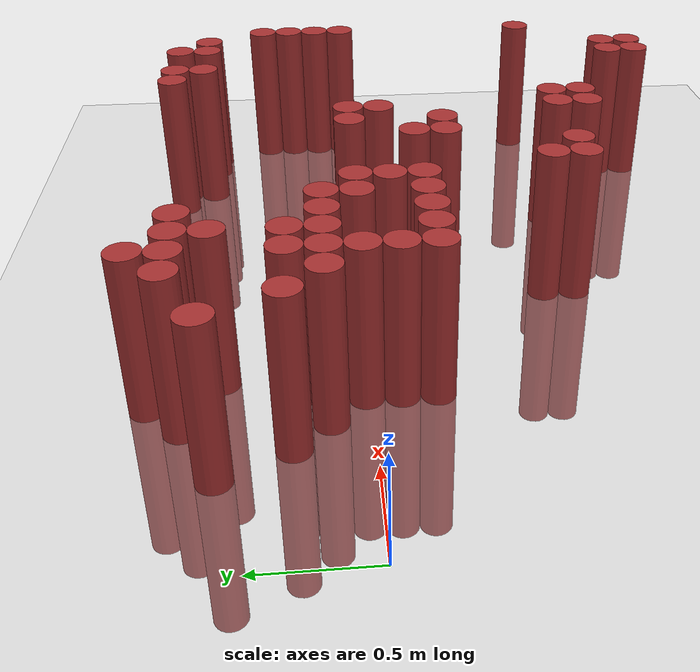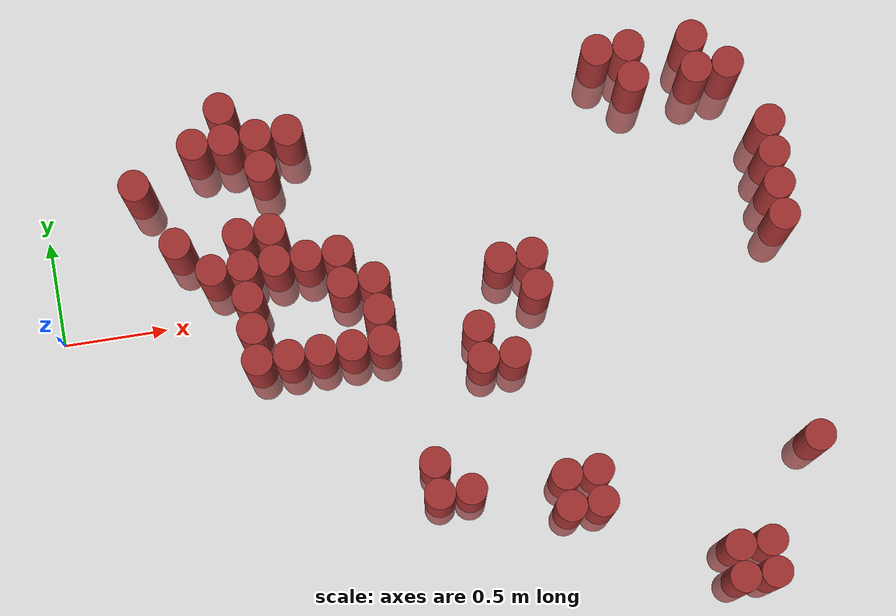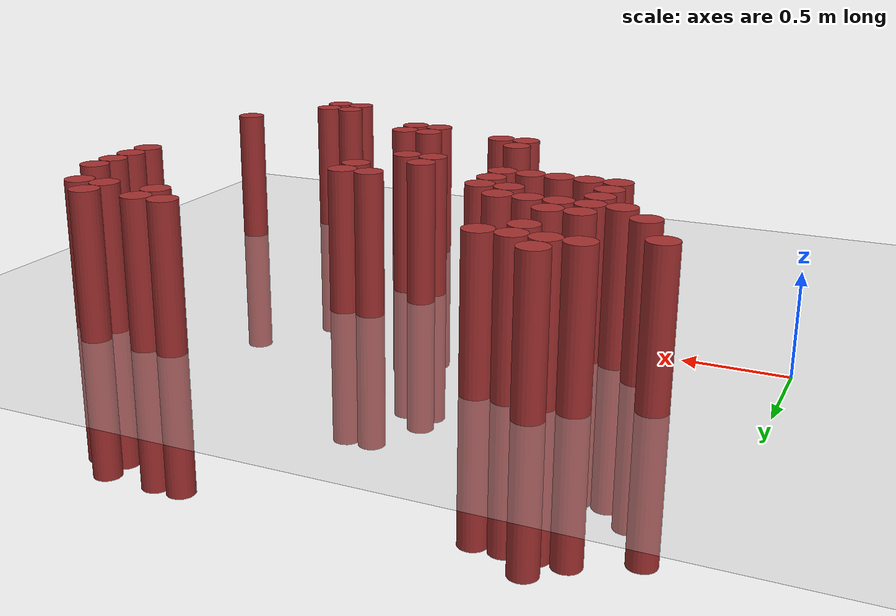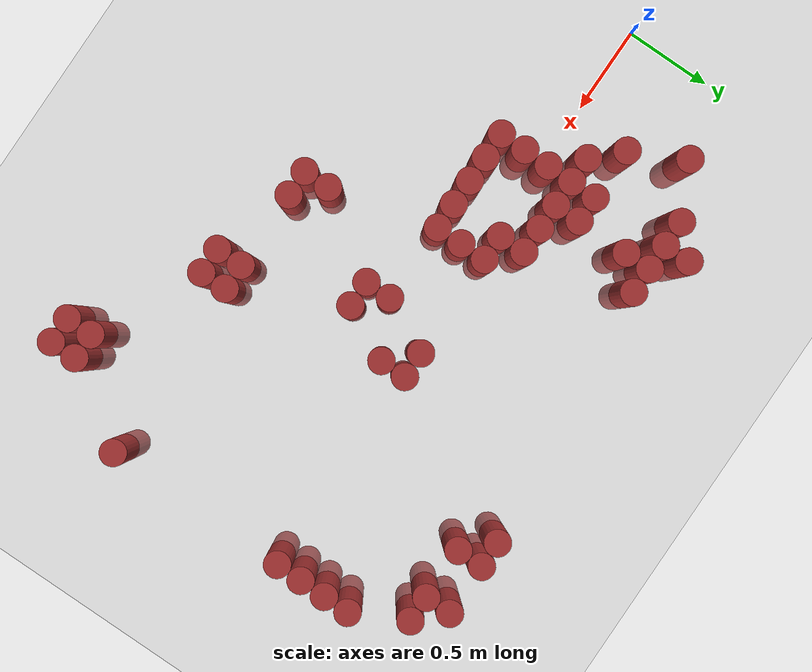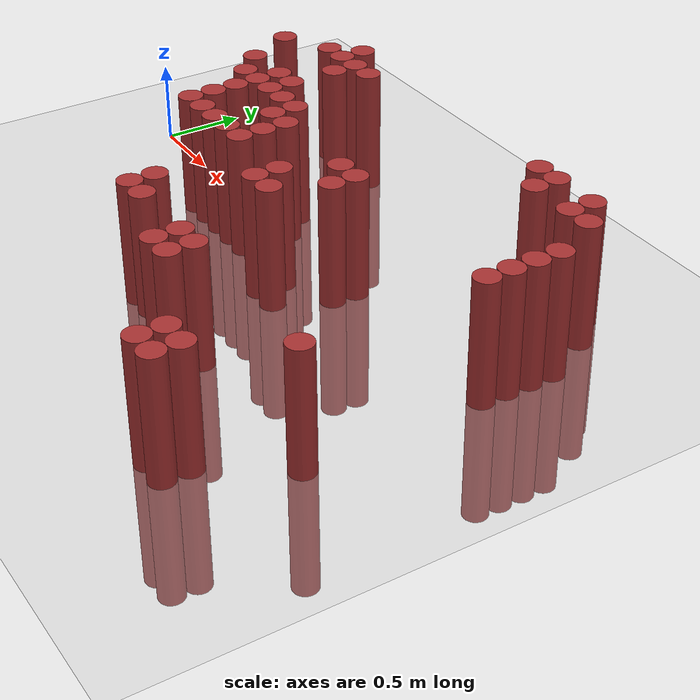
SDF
<sdf version="1.6">
 <world name="default">
  <model name="ground_plane">
   <static>1</static>
   <link name="link">
    <collision name="collision">
     <geometry><plane><normal>0 0 1</normal><size>100 100</size></plane></geometry>
     <surface><friction><ode><mu>100</mu><mu2>50</mu2></ode></friction></surface>
    </collision>
    <visual name="visual">
     <cast_shadows>0</cast_shadows>
     <geometry><plane><normal>0 0 1</normal><size>100 100</size></plane></geometry>
     <material>
      <script><uri>file://media/materials/scripts/gazebo.material</uri><name>Gazebo/Grey</name></script>
     </material>
    </visual>
   </link>
  </model>
  <model name="unit_cylinder_436">
   <static>1</static>
   <pose>0.475000 0.625000 0.000000 0.000000 0.000000 0.000000</pose>
   <link name="link">
    <inertial>
     <mass>1</mass>
     <inertia><ixx>0.145833</ixx><ixy>0</ixy><ixz>0</ixz><iyy>0.145833</iyy><iyz>0</iyz><izz>0.125</izz></inertia>
    </inertial>
    <collision name="collision">
     <geometry><cylinder><radius>0.075000</radius><length>1.5</length></cylinder></geometry>
    </collision>
    <visual name="visual">
     <geometry><cylinder><radius>0.075000</radius><length>1.5</length></cylinder></geometry>
     <material>
      <ambient>0.648000 0.192000 0.192000 1</ambient>
      <diffuse>0.648000 0.192000 0.192000 1</diffuse>
     </material>
     <material>
      <script><name>Gazebo/Grey</name><uri>file://media/materials/scripts/gazebo.material</uri></script>
     </material>
    </visual>
   </link>
  </model>
  <model name="unit_cylinder_441">
   <static>1</static>
   <pose>0.625000 0.325000 0.000000 0.000000 0.000000 0.000000</pose>
   <link name="link">
    <inertial>
     <mass>1</mass>
     <inertia><ixx>0.145833</ixx><ixy>0</ixy><ixz>0</ixz><iyy>0.145833</iyy><iyz>0</iyz><izz>0.125</izz></inertia>
    </inertial>
    <collision name="collision">
     <geometry><cylinder><radius>0.075000</radius><length>1.5</length></cylinder></geometry>
    </collision>
    <visual name="visual">
     <geometry><cylinder><radius>0.075000</radius><length>1.5</length></cylinder></geometry>
     <material>
      <ambient>0.648000 0.192000 0.192000 1</ambient>
      <diffuse>0.648000 0.192000 0.192000 1</diffuse>
     </material>
     <material>
      <script><name>Gazebo/Grey</name><uri>file://media/materials/scripts/gazebo.material</uri></script>
     </material>
    </visual>
   </link>
  </model>
  <model name="unit_cylinder_449">
   <static>1</static>
   <pose>0.775000 0.175000 0.000000 0.000000 0.000000 0.000000</pose>
   <link name="link">
    <inertial>
     <mass>1</mass>
     <inertia><ixx>0.145833</ixx><ixy>0</ixy><ixz>0</ixz><iyy>0.145833</iyy><iyz>0</iyz><izz>0.125</izz></inertia>
    </inertial>
    <collision name="collision">
     <geometry><cylinder><radius>0.075000</radius><length>1.5</length></cylinder></geometry>
    </collision>
    <visual name="visual">
     <geometry><cylinder><radius>0.075000</radius><length>1.5</length></cylinder></geometry>
     <material>
      <ambient>0.648000 0.192000 0.192000 1</ambient>
      <diffuse>0.648000 0.192000 0.192000 1</diffuse>
     </material>
     <material>
      <script><name>Gazebo/Grey</name><uri>file://media/materials/scripts/gazebo.material</uri></script>
     </material>
    </visual>
   </link>
  </model>
  <model name="unit_cylinder_450">
   <static>1</static>
   <pose>0.775000 0.775000 0.000000 0.000000 0.000000 0.000000</pose>
   <link name="link">
    <inertial>
     <mass>1</mass>
     <inertia><ixx>0.145833</ixx><ixy>0</ixy><ixz>0</ixz><iyy>0.145833</iyy><iyz>0</iyz><izz>0.125</izz></inertia>
    </inertial>
    <collision name="collision">
     <geometry><cylinder><radius>0.075000</radius><length>1.5</length></cylinder></geometry>
    </collision>
    <visual name="visual">
     <geometry><cylinder><radius>0.075000</radius><length>1.5</length></cylinder></geometry>
     <material>
      <ambient>0.648000 0.192000 0.192000 1</ambient>
      <diffuse>0.648000 0.192000 0.192000 1</diffuse>
     </material>
     <material>
      <script><name>Gazebo/Grey</name><uri>file://media/materials/scripts/gazebo.material</uri></script>
     </material>
    </visual>
   </link>
  </model>
  <model name="unit_cylinder_460">
   <static>1</static>
   <pose>0.925000 -0.275000 0.000000 0.000000 0.000000 0.000000</pose>
   <link name="link">
    <inertial>
     <mass>1</mass>
     <inertia><ixx>0.145833</ixx><ixy>0</ixy><ixz>0</ixz><iyy>0.145833</iyy><iyz>0</iyz><izz>0.125</izz></inertia>
    </inertial>
    <collision name="collision">
     <geometry><cylinder><radius>0.075000</radius><length>1.5</length></cylinder></geometry>
    </collision>
    <visual name="visual">
     <geometry><cylinder><radius>0.075000</radius><length>1.5</length></cylinder></geometry>
     <material>
      <ambient>0.648000 0.192000 0.192000 1</ambient>
      <diffuse>0.648000 0.192000 0.192000 1</diffuse>
     </material>
     <material>
      <script><name>Gazebo/Grey</name><uri>file://media/materials/scripts/gazebo.material</uri></script>
     </material>
    </visual>
   </link>
  </model>
  <model name="unit_cylinder_461">
   <static>1</static>
   <pose>0.925000 -0.125000 0.000000 0.000000 0.000000 0.000000</pose>
   <link name="link">
    <inertial>
     <mass>1</mass>
     <inertia><ixx>0.145833</ixx><ixy>0</ixy><ixz>0</ixz><iyy>0.145833</iyy><iyz>0</iyz><izz>0.125</izz></inertia>
    </inertial>
    <collision name="collision">
     <geometry><cylinder><radius>0.075000</radius><length>1.5</length></cylinder></geometry>
    </collision>
    <visual name="visual">
     <geometry><cylinder><radius>0.075000</radius><length>1.5</length></cylinder></geometry>
     <material>
      <ambient>0.648000 0.192000 0.192000 1</ambient>
      <diffuse>0.648000 0.192000 0.192000 1</diffuse>
     </material>
     <material>
      <script><name>Gazebo/Grey</name><uri>file://media/materials/scripts/gazebo.material</uri></script>
     </material>
    </visual>
   </link>
  </model>
  <model name="unit_cylinder_462">
   <static>1</static>
   <pose>0.925000 0.025000 0.000000 0.000000 0.000000 0.000000</pose>
   <link name="link">
    <inertial>
     <mass>1</mass>
     <inertia><ixx>0.145833</ixx><ixy>0</ixy><ixz>0</ixz><iyy>0.145833</iyy><iyz>0</iyz><izz>0.125</izz></inertia>
    </inertial>
    <collision name="collision">
     <geometry><cylinder><radius>0.075000</radius><length>1.5</length></cylinder></geometry>
    </collision>
    <visual name="visual">
     <geometry><cylinder><radius>0.075000</radius><length>1.5</length></cylinder></geometry>
     <material>
      <ambient>0.648000 0.192000 0.192000 1</ambient>
      <diffuse>0.648000 0.192000 0.192000 1</diffuse>
     </material>
     <material>
      <script><name>Gazebo/Grey</name><uri>file://media/materials/scripts/gazebo.material</uri></script>
     </material>
    </visual>
   </link>
  </model>
  <model name="unit_cylinder_463">
   <static>1</static>
   <pose>0.925000 0.175000 0.000000 0.000000 0.000000 0.000000</pose>
   <link name="link">
    <inertial>
     <mass>1</mass>
     <inertia><ixx>0.145833</ixx><ixy>0</ixy><ixz>0</ixz><iyy>0.145833</iyy><iyz>0</iyz><izz>0.125</izz></inertia>
    </inertial>
    <collision name="collision">
     <geometry><cylinder><radius>0.075000</radius><length>1.5</length></cylinder></geometry>
    </collision>
    <visual name="visual">
     <geometry><cylinder><radius>0.075000</radius><length>1.5</length></cylinder></geometry>
     <material>
      <ambient>0.648000 0.192000 0.192000 1</ambient>
      <diffuse>0.648000 0.192000 0.192000 1</diffuse>
     </material>
     <material>
      <script><name>Gazebo/Grey</name><uri>file://media/materials/scripts/gazebo.material</uri></script>
     </material>
    </visual>
   </link>
  </model>
  <model name="unit_cylinder_464">
   <static>1</static>
   <pose>0.925000 0.325000 0.000000 0.000000 0.000000 0.000000</pose>
   <link name="link">
    <inertial>
     <mass>1</mass>
     <inertia><ixx>0.145833</ixx><ixy>0</ixy><ixz>0</ixz><iyy>0.145833</iyy><iyz>0</iyz><izz>0.125</izz></inertia>
    </inertial>
    <collision name="collision">
     <geometry><cylinder><radius>0.075000</radius><length>1.5</length></cylinder></geometry>
    </collision>
    <visual name="visual">
     <geometry><cylinder><radius>0.075000</radius><length>1.5</length></cylinder></geometry>
     <material>
      <ambient>0.648000 0.192000 0.192000 1</ambient>
      <diffuse>0.648000 0.192000 0.192000 1</diffuse>
     </material>
     <material>
      <script><name>Gazebo/Grey</name><uri>file://media/materials/scripts/gazebo.material</uri></script>
     </material>
    </visual>
   </link>
  </model>
  <model name="unit_cylinder_465">
   <static>1</static>
   <pose>0.925000 0.775000 0.000000 0.000000 0.000000 0.000000</pose>
   <link name="link">
    <inertial>
     <mass>1</mass>
     <inertia><ixx>0.145833</ixx><ixy>0</ixy><ixz>0</ixz><iyy>0.145833</iyy><iyz>0</iyz><izz>0.125</izz></inertia>
    </inertial>
    <collision name="collision">
     <geometry><cylinder><radius>0.075000</radius><length>1.5</length></cylinder></geometry>
    </collision>
    <visual name="visual">
     <geometry><cylinder><radius>0.075000</radius><length>1.5</length></cylinder></geometry>
     <material>
      <ambient>0.648000 0.192000 0.192000 1</ambient>
      <diffuse>0.648000 0.192000 0.192000 1</diffuse>
     </material>
     <material>
      <script><name>Gazebo/Grey</name><uri>file://media/materials/scripts/gazebo.material</uri></script>
     </material>
    </visual>
   </link>
  </model>
  <model name="unit_cylinder_466">
   <static>1</static>
   <pose>0.925000 0.925000 0.000000 0.000000 0.000000 0.000000</pose>
   <link name="link">
    <inertial>
     <mass>1</mass>
     <inertia><ixx>0.145833</ixx><ixy>0</ixy><ixz>0</ixz><iyy>0.145833</iyy><iyz>0</iyz><izz>0.125</izz></inertia>
    </inertial>
    <collision name="collision">
     <geometry><cylinder><radius>0.075000</radius><length>1.5</length></cylinder></geometry>
    </collision>
    <visual name="visual">
     <geometry><cylinder><radius>0.075000</radius><length>1.5</length></cylinder></geometry>
     <material>
      <ambient>0.648000 0.192000 0.192000 1</ambient>
      <diffuse>0.648000 0.192000 0.192000 1</diffuse>
     </material>
     <material>
      <script><name>Gazebo/Grey</name><uri>file://media/materials/scripts/gazebo.material</uri></script>
     </material>
    </visual>
   </link>
  </model>
  <model name="unit_cylinder_472">
   <static>1</static>
   <pose>1.075000 -0.275000 0.000000 0.000000 0.000000 0.000000</pose>
   <link name="link">
    <inertial>
     <mass>1</mass>
     <inertia><ixx>0.145833</ixx><ixy>0</ixy><ixz>0</ixz><iyy>0.145833</iyy><iyz>0</iyz><izz>0.125</izz></inertia>
    </inertial>
    <collision name="collision">
     <geometry><cylinder><radius>0.075000</radius><length>1.5</length></cylinder></geometry>
    </collision>
    <visual name="visual">
     <geometry><cylinder><radius>0.075000</radius><length>1.5</length></cylinder></geometry>
     <material>
      <ambient>0.648000 0.192000 0.192000 1</ambient>
      <diffuse>0.648000 0.192000 0.192000 1</diffuse>
     </material>
     <material>
      <script><name>Gazebo/Grey</name><uri>file://media/materials/scripts/gazebo.material</uri></script>
     </material>
    </visual>
   </link>
  </model>
  <model name="unit_cylinder_473">
   <static>1</static>
   <pose>1.075000 0.175000 0.000000 0.000000 0.000000 0.000000</pose>
   <link name="link">
    <inertial>
     <mass>1</mass>
     <inertia><ixx>0.145833</ixx><ixy>0</ixy><ixz>0</ixz><iyy>0.145833</iyy><iyz>0</iyz><izz>0.125</izz></inertia>
    </inertial>
    <collision name="collision">
     <geometry><cylinder><radius>0.075000</radius><length>1.5</length></cylinder></geometry>
    </collision>
    <visual name="visual">
     <geometry><cylinder><radius>0.075000</radius><length>1.5</length></cylinder></geometry>
     <material>
      <ambient>0.648000 0.192000 0.192000 1</ambient>
      <diffuse>0.648000 0.192000 0.192000 1</diffuse>
     </material>
     <material>
      <script><name>Gazebo/Grey</name><uri>file://media/materials/scripts/gazebo.material</uri></script>
     </material>
    </visual>
   </link>
  </model>
  <model name="unit_cylinder_474">
   <static>1</static>
   <pose>1.075000 0.325000 0.000000 0.000000 0.000000 0.000000</pose>
   <link name="link">
    <inertial>
     <mass>1</mass>
     <inertia><ixx>0.145833</ixx><ixy>0</ixy><ixz>0</ixz><iyy>0.145833</iyy><iyz>0</iyz><izz>0.125</izz></inertia>
    </inertial>
    <collision name="collision">
     <geometry><cylinder><radius>0.075000</radius><length>1.5</length></cylinder></geometry>
    </collision>
    <visual name="visual">
     <geometry><cylinder><radius>0.075000</radius><length>1.5</length></cylinder></geometry>
     <material>
      <ambient>0.648000 0.192000 0.192000 1</ambient>
      <diffuse>0.648000 0.192000 0.192000 1</diffuse>
     </material>
     <material>
      <script><name>Gazebo/Grey</name><uri>file://media/materials/scripts/gazebo.material</uri></script>
     </material>
    </visual>
   </link>
  </model>
  <model name="unit_cylinder_475">
   <static>1</static>
   <pose>1.075000 0.625000 0.000000 0.000000 0.000000 0.000000</pose>
   <link name="link">
    <inertial>
     <mass>1</mass>
     <inertia><ixx>0.145833</ixx><ixy>0</ixy><ixz>0</ixz><iyy>0.145833</iyy><iyz>0</iyz><izz>0.125</izz></inertia>
    </inertial>
    <collision name="collision">
     <geometry><cylinder><radius>0.075000</radius><length>1.5</length></cylinder></geometry>
    </collision>
    <visual name="visual">
     <geometry><cylinder><radius>0.075000</radius><length>1.5</length></cylinder></geometry>
     <material>
      <ambient>0.648000 0.192000 0.192000 1</ambient>
      <diffuse>0.648000 0.192000 0.192000 1</diffuse>
     </material>
     <material>
      <script><name>Gazebo/Grey</name><uri>file://media/materials/scripts/gazebo.material</uri></script>
     </material>
    </visual>
   </link>
  </model>
  <model name="unit_cylinder_476">
   <static>1</static>
   <pose>1.075000 0.775000 0.000000 0.000000 0.000000 0.000000</pose>
   <link name="link">
    <inertial>
     <mass>1</mass>
     <inertia><ixx>0.145833</ixx><ixy>0</ixy><ixz>0</ixz><iyy>0.145833</iyy><iyz>0</iyz><izz>0.125</izz></inertia>
    </inertial>
    <collision name="collision">
     <geometry><cylinder><radius>0.075000</radius><length>1.5</length></cylinder></geometry>
    </collision>
    <visual name="visual">
     <geometry><cylinder><radius>0.075000</radius><length>1.5</length></cylinder></geometry>
     <material>
      <ambient>0.648000 0.192000 0.192000 1</ambient>
      <diffuse>0.648000 0.192000 0.192000 1</diffuse>
     </material>
     <material>
      <script><name>Gazebo/Grey</name><uri>file://media/materials/scripts/gazebo.material</uri></script>
     </material>
    </visual>
   </link>
  </model>
  <model name="unit_cylinder_488">
   <static>1</static>
   <pose>1.225000 -0.275000 0.000000 0.000000 0.000000 0.000000</pose>
   <link name="link">
    <inertial>
     <mass>1</mass>
     <inertia><ixx>0.145833</ixx><ixy>0</ixy><ixz>0</ixz><iyy>0.145833</iyy><iyz>0</iyz><izz>0.125</izz></inertia>
    </inertial>
    <collision name="collision">
     <geometry><cylinder><radius>0.075000</radius><length>1.5</length></cylinder></geometry>
    </collision>
    <visual name="visual">
     <geometry><cylinder><radius>0.075000</radius><length>1.5</length></cylinder></geometry>
     <material>
      <ambient>0.648000 0.192000 0.192000 1</ambient>
      <diffuse>0.648000 0.192000 0.192000 1</diffuse>
     </material>
     <material>
      <script><name>Gazebo/Grey</name><uri>file://media/materials/scripts/gazebo.material</uri></script>
     </material>
    </visual>
   </link>
  </model>
  <model name="unit_cylinder_489">
   <static>1</static>
   <pose>1.225000 0.175000 0.000000 0.000000 0.000000 0.000000</pose>
   <link name="link">
    <inertial>
     <mass>1</mass>
     <inertia><ixx>0.145833</ixx><ixy>0</ixy><ixz>0</ixz><iyy>0.145833</iyy><iyz>0</iyz><izz>0.125</izz></inertia>
    </inertial>
    <collision name="collision">
     <geometry><cylinder><radius>0.075000</radius><length>1.5</length></cylinder></geometry>
    </collision>
    <visual name="visual">
     <geometry><cylinder><radius>0.075000</radius><length>1.5</length></cylinder></geometry>
     <material>
      <ambient>0.648000 0.192000 0.192000 1</ambient>
      <diffuse>0.648000 0.192000 0.192000 1</diffuse>
     </material>
     <material>
      <script><name>Gazebo/Grey</name><uri>file://media/materials/scripts/gazebo.material</uri></script>
     </material>
    </visual>
   </link>
  </model>
  <model name="unit_cylinder_490">
   <static>1</static>
   <pose>1.225000 0.775000 0.000000 0.000000 0.000000 0.000000</pose>
   <link name="link">
    <inertial>
     <mass>1</mass>
     <inertia><ixx>0.145833</ixx><ixy>0</ixy><ixz>0</ixz><iyy>0.145833</iyy><iyz>0</iyz><izz>0.125</izz></inertia>
    </inertial>
    <collision name="collision">
     <geometry><cylinder><radius>0.075000</radius><length>1.5</length></cylinder></geometry>
    </collision>
    <visual name="visual">
     <geometry><cylinder><radius>0.075000</radius><length>1.5</length></cylinder></geometry>
     <material>
      <ambient>0.648000 0.192000 0.192000 1</ambient>
      <diffuse>0.648000 0.192000 0.192000 1</diffuse>
     </material>
     <material>
      <script><name>Gazebo/Grey</name><uri>file://media/materials/scripts/gazebo.material</uri></script>
     </material>
    </visual>
   </link>
  </model>
  <model name="unit_cylinder_501">
   <static>1</static>
   <pose>1.375000 -0.275000 0.000000 0.000000 0.000000 0.000000</pose>
   <link name="link">
    <inertial>
     <mass>1</mass>
     <inertia><ixx>0.145833</ixx><ixy>0</ixy><ixz>0</ixz><iyy>0.145833</iyy><iyz>0</iyz><izz>0.125</izz></inertia>
    </inertial>
    <collision name="collision">
     <geometry><cylinder><radius>0.075000</radius><length>1.5</length></cylinder></geometry>
    </collision>
    <visual name="visual">
     <geometry><cylinder><radius>0.075000</radius><length>1.5</length></cylinder></geometry>
     <material>
      <ambient>0.648000 0.192000 0.192000 1</ambient>
      <diffuse>0.648000 0.192000 0.192000 1</diffuse>
     </material>
     <material>
      <script><name>Gazebo/Grey</name><uri>file://media/materials/scripts/gazebo.material</uri></script>
     </material>
    </visual>
   </link>
  </model>
  <model name="unit_cylinder_502">
   <static>1</static>
   <pose>1.375000 0.025000 0.000000 0.000000 0.000000 0.000000</pose>
   <link name="link">
    <inertial>
     <mass>1</mass>
     <inertia><ixx>0.145833</ixx><ixy>0</ixy><ixz>0</ixz><iyy>0.145833</iyy><iyz>0</iyz><izz>0.125</izz></inertia>
    </inertial>
    <collision name="collision">
     <geometry><cylinder><radius>0.075000</radius><length>1.5</length></cylinder></geometry>
    </collision>
    <visual name="visual">
     <geometry><cylinder><radius>0.075000</radius><length>1.5</length></cylinder></geometry>
     <material>
      <ambient>0.648000 0.192000 0.192000 1</ambient>
      <diffuse>0.648000 0.192000 0.192000 1</diffuse>
     </material>
     <material>
      <script><name>Gazebo/Grey</name><uri>file://media/materials/scripts/gazebo.material</uri></script>
     </material>
    </visual>
   </link>
  </model>
  <model name="unit_cylinder_503">
   <static>1</static>
   <pose>1.375000 0.175000 0.000000 0.000000 0.000000 0.000000</pose>
   <link name="link">
    <inertial>
     <mass>1</mass>
     <inertia><ixx>0.145833</ixx><ixy>0</ixy><ixz>0</ixz><iyy>0.145833</iyy><iyz>0</iyz><izz>0.125</izz></inertia>
    </inertial>
    <collision name="collision">
     <geometry><cylinder><radius>0.075000</radius><length>1.5</length></cylinder></geometry>
    </collision>
    <visual name="visual">
     <geometry><cylinder><radius>0.075000</radius><length>1.5</length></cylinder></geometry>
     <material>
      <ambient>0.648000 0.192000 0.192000 1</ambient>
      <diffuse>0.648000 0.192000 0.192000 1</diffuse>
     </material>
     <material>
      <script><name>Gazebo/Grey</name><uri>file://media/materials/scripts/gazebo.material</uri></script>
     </material>
    </visual>
   </link>
  </model>
  <model name="unit_cylinder_508">
   <static>1</static>
   <pose>1.525000 -0.275000 0.000000 0.000000 0.000000 0.000000</pose>
   <link name="link">
    <inertial>
     <mass>1</mass>
     <inertia><ixx>0.145833</ixx><ixy>0</ixy><ixz>0</ixz><iyy>0.145833</iyy><iyz>0</iyz><izz>0.125</izz></inertia>
    </inertial>
    <collision name="collision">
     <geometry><cylinder><radius>0.075000</radius><length>1.5</length></cylinder></geometry>
    </collision>
    <visual name="visual">
     <geometry><cylinder><radius>0.075000</radius><length>1.5</length></cylinder></geometry>
     <material>
      <ambient>0.648000 0.192000 0.192000 1</ambient>
      <diffuse>0.648000 0.192000 0.192000 1</diffuse>
     </material>
     <material>
      <script><name>Gazebo/Grey</name><uri>file://media/materials/scripts/gazebo.material</uri></script>
     </material>
    </visual>
   </link>
  </model>
  <model name="unit_cylinder_509">
   <static>1</static>
   <pose>1.525000 -0.125000 0.000000 0.000000 0.000000 0.000000</pose>
   <link name="link">
    <inertial>
     <mass>1</mass>
     <inertia><ixx>0.145833</ixx><ixy>0</ixy><ixz>0</ixz><iyy>0.145833</iyy><iyz>0</iyz><izz>0.125</izz></inertia>
    </inertial>
    <collision name="collision">
     <geometry><cylinder><radius>0.075000</radius><length>1.5</length></cylinder></geometry>
    </collision>
    <visual name="visual">
     <geometry><cylinder><radius>0.075000</radius><length>1.5</length></cylinder></geometry>
     <material>
      <ambient>0.648000 0.192000 0.192000 1</ambient>
      <diffuse>0.648000 0.192000 0.192000 1</diffuse>
     </material>
     <material>
      <script><name>Gazebo/Grey</name><uri>file://media/materials/scripts/gazebo.material</uri></script>
     </material>
    </visual>
   </link>
  </model>
  <model name="unit_cylinder_510">
   <static>1</static>
   <pose>1.525000 0.025000 0.000000 0.000000 0.000000 0.000000</pose>
   <link name="link">
    <inertial>
     <mass>1</mass>
     <inertia><ixx>0.145833</ixx><ixy>0</ixy><ixz>0</ixz><iyy>0.145833</iyy><iyz>0</iyz><izz>0.125</izz></inertia>
    </inertial>
    <collision name="collision">
     <geometry><cylinder><radius>0.075000</radius><length>1.5</length></cylinder></geometry>
    </collision>
    <visual name="visual">
     <geometry><cylinder><radius>0.075000</radius><length>1.5</length></cylinder></geometry>
     <material>
      <ambient>0.648000 0.192000 0.192000 1</ambient>
      <diffuse>0.648000 0.192000 0.192000 1</diffuse>
     </material>
     <material>
      <script><name>Gazebo/Grey</name><uri>file://media/materials/scripts/gazebo.material</uri></script>
     </material>
    </visual>
   </link>
  </model>
  <model name="unit_cylinder_514">
   <static>1</static>
   <pose>1.675000 -1.025000 0.000000 0.000000 0.000000 0.000000</pose>
   <link name="link">
    <inertial>
     <mass>1</mass>
     <inertia><ixx>0.145833</ixx><ixy>0</ixy><ixz>0</ixz><iyy>0.145833</iyy><iyz>0</iyz><izz>0.125</izz></inertia>
    </inertial>
    <collision name="collision">
     <geometry><cylinder><radius>0.075000</radius><length>1.5</length></cylinder></geometry>
    </collision>
    <visual name="visual">
     <geometry><cylinder><radius>0.075000</radius><length>1.5</length></cylinder></geometry>
     <material>
      <ambient>0.648000 0.192000 0.192000 1</ambient>
      <diffuse>0.648000 0.192000 0.192000 1</diffuse>
     </material>
     <material>
      <script><name>Gazebo/Grey</name><uri>file://media/materials/scripts/gazebo.material</uri></script>
     </material>
    </visual>
   </link>
  </model>
  <model name="unit_cylinder_515">
   <static>1</static>
   <pose>1.675000 -0.875000 0.000000 0.000000 0.000000 0.000000</pose>
   <link name="link">
    <inertial>
     <mass>1</mass>
     <inertia><ixx>0.145833</ixx><ixy>0</ixy><ixz>0</ixz><iyy>0.145833</iyy><iyz>0</iyz><izz>0.125</izz></inertia>
    </inertial>
    <collision name="collision">
     <geometry><cylinder><radius>0.075000</radius><length>1.5</length></cylinder></geometry>
    </collision>
    <visual name="visual">
     <geometry><cylinder><radius>0.075000</radius><length>1.5</length></cylinder></geometry>
     <material>
      <ambient>0.648000 0.192000 0.192000 1</ambient>
      <diffuse>0.648000 0.192000 0.192000 1</diffuse>
     </material>
     <material>
      <script><name>Gazebo/Grey</name><uri>file://media/materials/scripts/gazebo.material</uri></script>
     </material>
    </visual>
   </link>
  </model>
  <model name="unit_cylinder_522">
   <static>1</static>
   <pose>1.825000 -1.025000 0.000000 0.000000 0.000000 0.000000</pose>
   <link name="link">
    <inertial>
     <mass>1</mass>
     <inertia><ixx>0.145833</ixx><ixy>0</ixy><ixz>0</ixz><iyy>0.145833</iyy><iyz>0</iyz><izz>0.125</izz></inertia>
    </inertial>
    <collision name="collision">
     <geometry><cylinder><radius>0.075000</radius><length>1.5</length></cylinder></geometry>
    </collision>
    <visual name="visual">
     <geometry><cylinder><radius>0.075000</radius><length>1.5</length></cylinder></geometry>
     <material>
      <ambient>0.648000 0.192000 0.192000 1</ambient>
      <diffuse>0.648000 0.192000 0.192000 1</diffuse>
     </material>
     <material>
      <script><name>Gazebo/Grey</name><uri>file://media/materials/scripts/gazebo.material</uri></script>
     </material>
    </visual>
   </link>
  </model>
  <model name="unit_cylinder_528">
   <static>1</static>
   <pose>1.975000 -0.425000 0.000000 0.000000 0.000000 0.000000</pose>
   <link name="link">
    <inertial>
     <mass>1</mass>
     <inertia><ixx>0.145833</ixx><ixy>0</ixy><ixz>0</ixz><iyy>0.145833</iyy><iyz>0</iyz><izz>0.125</izz></inertia>
    </inertial>
    <collision name="collision">
     <geometry><cylinder><radius>0.075000</radius><length>1.5</length></cylinder></geometry>
    </collision>
    <visual name="visual">
     <geometry><cylinder><radius>0.075000</radius><length>1.5</length></cylinder></geometry>
     <material>
      <ambient>0.648000 0.192000 0.192000 1</ambient>
      <diffuse>0.648000 0.192000 0.192000 1</diffuse>
     </material>
     <material>
      <script><name>Gazebo/Grey</name><uri>file://media/materials/scripts/gazebo.material</uri></script>
     </material>
    </visual>
   </link>
  </model>
  <model name="unit_cylinder_529">
   <static>1</static>
   <pose>1.975000 -0.275000 0.000000 0.000000 0.000000 0.000000</pose>
   <link name="link">
    <inertial>
     <mass>1</mass>
     <inertia><ixx>0.145833</ixx><ixy>0</ixy><ixz>0</ixz><iyy>0.145833</iyy><iyz>0</iyz><izz>0.125</izz></inertia>
    </inertial>
    <collision name="collision">
     <geometry><cylinder><radius>0.075000</radius><length>1.5</length></cylinder></geometry>
    </collision>
    <visual name="visual">
     <geometry><cylinder><radius>0.075000</radius><length>1.5</length></cylinder></geometry>
     <material>
      <ambient>0.648000 0.192000 0.192000 1</ambient>
      <diffuse>0.648000 0.192000 0.192000 1</diffuse>
     </material>
     <material>
      <script><name>Gazebo/Grey</name><uri>file://media/materials/scripts/gazebo.material</uri></script>
     </material>
    </visual>
   </link>
  </model>
  <model name="unit_cylinder_532">
   <static>1</static>
   <pose>2.125000 -0.425000 0.000000 0.000000 0.000000 0.000000</pose>
   <link name="link">
    <inertial>
     <mass>1</mass>
     <inertia><ixx>0.145833</ixx><ixy>0</ixy><ixz>0</ixz><iyy>0.145833</iyy><iyz>0</iyz><izz>0.125</izz></inertia>
    </inertial>
    <collision name="collision">
     <geometry><cylinder><radius>0.075000</radius><length>1.5</length></cylinder></geometry>
    </collision>
    <visual name="visual">
     <geometry><cylinder><radius>0.075000</radius><length>1.5</length></cylinder></geometry>
     <material>
      <ambient>0.648000 0.192000 0.192000 1</ambient>
      <diffuse>0.648000 0.192000 0.192000 1</diffuse>
     </material>
     <material>
      <script><name>Gazebo/Grey</name><uri>file://media/materials/scripts/gazebo.material</uri></script>
     </material>
    </visual>
   </link>
  </model>
  <model name="unit_cylinder_533">
   <static>1</static>
   <pose>2.125000 0.025000 0.000000 0.000000 0.000000 0.000000</pose>
   <link name="link">
    <inertial>
     <mass>1</mass>
     <inertia><ixx>0.145833</ixx><ixy>0</ixy><ixz>0</ixz><iyy>0.145833</iyy><iyz>0</iyz><izz>0.125</izz></inertia>
    </inertial>
    <collision name="collision">
     <geometry><cylinder><radius>0.075000</radius><length>1.5</length></cylinder></geometry>
    </collision>
    <visual name="visual">
     <geometry><cylinder><radius>0.075000</radius><length>1.5</length></cylinder></geometry>
     <material>
      <ambient>0.648000 0.192000 0.192000 1</ambient>
      <diffuse>0.648000 0.192000 0.192000 1</diffuse>
     </material>
     <material>
      <script><name>Gazebo/Grey</name><uri>file://media/materials/scripts/gazebo.material</uri></script>
     </material>
    </visual>
   </link>
  </model>
  <model name="unit_cylinder_534">
   <static>1</static>
   <pose>2.275000 -1.175000 0.000000 0.000000 0.000000 0.000000</pose>
   <link name="link">
    <inertial>
     <mass>1</mass>
     <inertia><ixx>0.145833</ixx><ixy>0</ixy><ixz>0</ixz><iyy>0.145833</iyy><iyz>0</iyz><izz>0.125</izz></inertia>
    </inertial>
    <collision name="collision">
     <geometry><cylinder><radius>0.075000</radius><length>1.5</length></cylinder></geometry>
    </collision>
    <visual name="visual">
     <geometry><cylinder><radius>0.075000</radius><length>1.5</length></cylinder></geometry>
     <material>
      <ambient>0.648000 0.192000 0.192000 1</ambient>
      <diffuse>0.648000 0.192000 0.192000 1</diffuse>
     </material>
     <material>
      <script><name>Gazebo/Grey</name><uri>file://media/materials/scripts/gazebo.material</uri></script>
     </material>
    </visual>
   </link>
  </model>
  <model name="unit_cylinder_535">
   <static>1</static>
   <pose>2.275000 -1.025000 0.000000 0.000000 0.000000 0.000000</pose>
   <link name="link">
    <inertial>
     <mass>1</mass>
     <inertia><ixx>0.145833</ixx><ixy>0</ixy><ixz>0</ixz><iyy>0.145833</iyy><iyz>0</iyz><izz>0.125</izz></inertia>
    </inertial>
    <collision name="collision">
     <geometry><cylinder><radius>0.075000</radius><length>1.5</length></cylinder></geometry>
    </collision>
    <visual name="visual">
     <geometry><cylinder><radius>0.075000</radius><length>1.5</length></cylinder></geometry>
     <material>
      <ambient>0.648000 0.192000 0.192000 1</ambient>
      <diffuse>0.648000 0.192000 0.192000 1</diffuse>
     </material>
     <material>
      <script><name>Gazebo/Grey</name><uri>file://media/materials/scripts/gazebo.material</uri></script>
     </material>
    </visual>
   </link>
  </model>
  <model name="unit_cylinder_536">
   <static>1</static>
   <pose>2.275000 -0.125000 0.000000 0.000000 0.000000 0.000000</pose>
   <link name="link">
    <inertial>
     <mass>1</mass>
     <inertia><ixx>0.145833</ixx><ixy>0</ixy><ixz>0</ixz><iyy>0.145833</iyy><iyz>0</iyz><izz>0.125</izz></inertia>
    </inertial>
    <collision name="collision">
     <geometry><cylinder><radius>0.075000</radius><length>1.5</length></cylinder></geometry>
    </collision>
    <visual name="visual">
     <geometry><cylinder><radius>0.075000</radius><length>1.5</length></cylinder></geometry>
     <material>
      <ambient>0.648000 0.192000 0.192000 1</ambient>
      <diffuse>0.648000 0.192000 0.192000 1</diffuse>
     </material>
     <material>
      <script><name>Gazebo/Grey</name><uri>file://media/materials/scripts/gazebo.material</uri></script>
     </material>
    </visual>
   </link>
  </model>
  <model name="unit_cylinder_537">
   <static>1</static>
   <pose>2.275000 0.025000 0.000000 0.000000 0.000000 0.000000</pose>
   <link name="link">
    <inertial>
     <mass>1</mass>
     <inertia><ixx>0.145833</ixx><ixy>0</ixy><ixz>0</ixz><iyy>0.145833</iyy><iyz>0</iyz><izz>0.125</izz></inertia>
    </inertial>
    <collision name="collision">
     <geometry><cylinder><radius>0.075000</radius><length>1.5</length></cylinder></geometry>
    </collision>
    <visual name="visual">
     <geometry><cylinder><radius>0.075000</radius><length>1.5</length></cylinder></geometry>
     <material>
      <ambient>0.648000 0.192000 0.192000 1</ambient>
      <diffuse>0.648000 0.192000 0.192000 1</diffuse>
     </material>
     <material>
      <script><name>Gazebo/Grey</name><uri>file://media/materials/scripts/gazebo.material</uri></script>
     </material>
    </visual>
   </link>
  </model>
  <model name="unit_cylinder_540">
   <static>1</static>
   <pose>2.425000 -1.175000 0.000000 0.000000 0.000000 0.000000</pose>
   <link name="link">
    <inertial>
     <mass>1</mass>
     <inertia><ixx>0.145833</ixx><ixy>0</ixy><ixz>0</ixz><iyy>0.145833</iyy><iyz>0</iyz><izz>0.125</izz></inertia>
    </inertial>
    <collision name="collision">
     <geometry><cylinder><radius>0.075000</radius><length>1.5</length></cylinder></geometry>
    </collision>
    <visual name="visual">
     <geometry><cylinder><radius>0.075000</radius><length>1.5</length></cylinder></geometry>
     <material>
      <ambient>0.648000 0.192000 0.192000 1</ambient>
      <diffuse>0.648000 0.192000 0.192000 1</diffuse>
     </material>
     <material>
      <script><name>Gazebo/Grey</name><uri>file://media/materials/scripts/gazebo.material</uri></script>
     </material>
    </visual>
   </link>
  </model>
  <model name="unit_cylinder_541">
   <static>1</static>
   <pose>2.425000 -1.025000 0.000000 0.000000 0.000000 0.000000</pose>
   <link name="link">
    <inertial>
     <mass>1</mass>
     <inertia><ixx>0.145833</ixx><ixy>0</ixy><ixz>0</ixz><iyy>0.145833</iyy><iyz>0</iyz><izz>0.125</izz></inertia>
    </inertial>
    <collision name="collision">
     <geometry><cylinder><radius>0.075000</radius><length>1.5</length></cylinder></geometry>
    </collision>
    <visual name="visual">
     <geometry><cylinder><radius>0.075000</radius><length>1.5</length></cylinder></geometry>
     <material>
      <ambient>0.648000 0.192000 0.192000 1</ambient>
      <diffuse>0.648000 0.192000 0.192000 1</diffuse>
     </material>
     <material>
      <script><name>Gazebo/Grey</name><uri>file://media/materials/scripts/gazebo.material</uri></script>
     </material>
    </visual>
   </link>
  </model>
  <model name="unit_cylinder_554">
   <static>1</static>
   <pose>2.725000 0.925000 0.000000 0.000000 0.000000 0.000000</pose>
   <link name="link">
    <inertial>
     <mass>1</mass>
     <inertia><ixx>0.145833</ixx><ixy>0</ixy><ixz>0</ixz><iyy>0.145833</iyy><iyz>0</iyz><izz>0.125</izz></inertia>
    </inertial>
    <collision name="collision">
     <geometry><cylinder><radius>0.075000</radius><length>1.5</length></cylinder></geometry>
    </collision>
    <visual name="visual">
     <geometry><cylinder><radius>0.075000</radius><length>1.5</length></cylinder></geometry>
     <material>
      <ambient>0.648000 0.192000 0.192000 1</ambient>
      <diffuse>0.648000 0.192000 0.192000 1</diffuse>
     </material>
     <material>
      <script><name>Gazebo/Grey</name><uri>file://media/materials/scripts/gazebo.material</uri></script>
     </material>
    </visual>
   </link>
  </model>
  <model name="unit_cylinder_566">
   <static>1</static>
   <pose>2.875000 0.775000 0.000000 0.000000 0.000000 0.000000</pose>
   <link name="link">
    <inertial>
     <mass>1</mass>
     <inertia><ixx>0.145833</ixx><ixy>0</ixy><ixz>0</ixz><iyy>0.145833</iyy><iyz>0</iyz><izz>0.125</izz></inertia>
    </inertial>
    <collision name="collision">
     <geometry><cylinder><radius>0.075000</radius><length>1.5</length></cylinder></geometry>
    </collision>
    <visual name="visual">
     <geometry><cylinder><radius>0.075000</radius><length>1.5</length></cylinder></geometry>
     <material>
      <ambient>0.648000 0.192000 0.192000 1</ambient>
      <diffuse>0.648000 0.192000 0.192000 1</diffuse>
     </material>
     <material>
      <script><name>Gazebo/Grey</name><uri>file://media/materials/scripts/gazebo.material</uri></script>
     </material>
    </visual>
   </link>
  </model>
  <model name="unit_cylinder_567">
   <static>1</static>
   <pose>2.875000 0.925000 0.000000 0.000000 0.000000 0.000000</pose>
   <link name="link">
    <inertial>
     <mass>1</mass>
     <inertia><ixx>0.145833</ixx><ixy>0</ixy><ixz>0</ixz><iyy>0.145833</iyy><iyz>0</iyz><izz>0.125</izz></inertia>
    </inertial>
    <collision name="collision">
     <geometry><cylinder><radius>0.075000</radius><length>1.5</length></cylinder></geometry>
    </collision>
    <visual name="visual">
     <geometry><cylinder><radius>0.075000</radius><length>1.5</length></cylinder></geometry>
     <material>
      <ambient>0.648000 0.192000 0.192000 1</ambient>
      <diffuse>0.648000 0.192000 0.192000 1</diffuse>
     </material>
     <material>
      <script><name>Gazebo/Grey</name><uri>file://media/materials/scripts/gazebo.material</uri></script>
     </material>
    </visual>
   </link>
  </model>
  <model name="unit_cylinder_577">
   <static>1</static>
   <pose>3.025000 -1.625000 0.000000 0.000000 0.000000 0.000000</pose>
   <link name="link">
    <inertial>
     <mass>1</mass>
     <inertia><ixx>0.145833</ixx><ixy>0</ixy><ixz>0</ixz><iyy>0.145833</iyy><iyz>0</iyz><izz>0.125</izz></inertia>
    </inertial>
    <collision name="collision">
     <geometry><cylinder><radius>0.075000</radius><length>1.5</length></cylinder></geometry>
    </collision>
    <visual name="visual">
     <geometry><cylinder><radius>0.075000</radius><length>1.5</length></cylinder></geometry>
     <material>
      <ambient>0.648000 0.192000 0.192000 1</ambient>
      <diffuse>0.648000 0.192000 0.192000 1</diffuse>
     </material>
     <material>
      <script><name>Gazebo/Grey</name><uri>file://media/materials/scripts/gazebo.material</uri></script>
     </material>
    </visual>
   </link>
  </model>
  <model name="unit_cylinder_578">
   <static>1</static>
   <pose>3.025000 -1.475000 0.000000 0.000000 0.000000 0.000000</pose>
   <link name="link">
    <inertial>
     <mass>1</mass>
     <inertia><ixx>0.145833</ixx><ixy>0</ixy><ixz>0</ixz><iyy>0.145833</iyy><iyz>0</iyz><izz>0.125</izz></inertia>
    </inertial>
    <collision name="collision">
     <geometry><cylinder><radius>0.075000</radius><length>1.5</length></cylinder></geometry>
    </collision>
    <visual name="visual">
     <geometry><cylinder><radius>0.075000</radius><length>1.5</length></cylinder></geometry>
     <material>
      <ambient>0.648000 0.192000 0.192000 1</ambient>
      <diffuse>0.648000 0.192000 0.192000 1</diffuse>
     </material>
     <material>
      <script><name>Gazebo/Grey</name><uri>file://media/materials/scripts/gazebo.material</uri></script>
     </material>
    </visual>
   </link>
  </model>
  <model name="unit_cylinder_587">
   <static>1</static>
   <pose>3.175000 -1.625000 0.000000 0.000000 0.000000 0.000000</pose>
   <link name="link">
    <inertial>
     <mass>1</mass>
     <inertia><ixx>0.145833</ixx><ixy>0</ixy><ixz>0</ixz><iyy>0.145833</iyy><iyz>0</iyz><izz>0.125</izz></inertia>
    </inertial>
    <collision name="collision">
     <geometry><cylinder><radius>0.075000</radius><length>1.5</length></cylinder></geometry>
    </collision>
    <visual name="visual">
     <geometry><cylinder><radius>0.075000</radius><length>1.5</length></cylinder></geometry>
     <material>
      <ambient>0.648000 0.192000 0.192000 1</ambient>
      <diffuse>0.648000 0.192000 0.192000 1</diffuse>
     </material>
     <material>
      <script><name>Gazebo/Grey</name><uri>file://media/materials/scripts/gazebo.material</uri></script>
     </material>
    </visual>
   </link>
  </model>
  <model name="unit_cylinder_588">
   <static>1</static>
   <pose>3.175000 -1.475000 0.000000 0.000000 0.000000 0.000000</pose>
   <link name="link">
    <inertial>
     <mass>1</mass>
     <inertia><ixx>0.145833</ixx><ixy>0</ixy><ixz>0</ixz><iyy>0.145833</iyy><iyz>0</iyz><izz>0.125</izz></inertia>
    </inertial>
    <collision name="collision">
     <geometry><cylinder><radius>0.075000</radius><length>1.5</length></cylinder></geometry>
    </collision>
    <visual name="visual">
     <geometry><cylinder><radius>0.075000</radius><length>1.5</length></cylinder></geometry>
     <material>
      <ambient>0.648000 0.192000 0.192000 1</ambient>
      <diffuse>0.648000 0.192000 0.192000 1</diffuse>
     </material>
     <material>
      <script><name>Gazebo/Grey</name><uri>file://media/materials/scripts/gazebo.material</uri></script>
     </material>
    </visual>
   </link>
  </model>
  <model name="unit_cylinder_589">
   <static>1</static>
   <pose>3.175000 0.775000 0.000000 0.000000 0.000000 0.000000</pose>
   <link name="link">
    <inertial>
     <mass>1</mass>
     <inertia><ixx>0.145833</ixx><ixy>0</ixy><ixz>0</ixz><iyy>0.145833</iyy><iyz>0</iyz><izz>0.125</izz></inertia>
    </inertial>
    <collision name="collision">
     <geometry><cylinder><radius>0.075000</radius><length>1.5</length></cylinder></geometry>
    </collision>
    <visual name="visual">
     <geometry><cylinder><radius>0.075000</radius><length>1.5</length></cylinder></geometry>
     <material>
      <ambient>0.648000 0.192000 0.192000 1</ambient>
      <diffuse>0.648000 0.192000 0.192000 1</diffuse>
     </material>
     <material>
      <script><name>Gazebo/Grey</name><uri>file://media/materials/scripts/gazebo.material</uri></script>
     </material>
    </visual>
   </link>
  </model>
  <model name="unit_cylinder_590">
   <static>1</static>
   <pose>3.175000 0.925000 0.000000 0.000000 0.000000 0.000000</pose>
   <link name="link">
    <inertial>
     <mass>1</mass>
     <inertia><ixx>0.145833</ixx><ixy>0</ixy><ixz>0</ixz><iyy>0.145833</iyy><iyz>0</iyz><izz>0.125</izz></inertia>
    </inertial>
    <collision name="collision">
     <geometry><cylinder><radius>0.075000</radius><length>1.5</length></cylinder></geometry>
    </collision>
    <visual name="visual">
     <geometry><cylinder><radius>0.075000</radius><length>1.5</length></cylinder></geometry>
     <material>
      <ambient>0.648000 0.192000 0.192000 1</ambient>
      <diffuse>0.648000 0.192000 0.192000 1</diffuse>
     </material>
     <material>
      <script><name>Gazebo/Grey</name><uri>file://media/materials/scripts/gazebo.material</uri></script>
     </material>
    </visual>
   </link>
  </model>
  <model name="unit_cylinder_595">
   <static>1</static>
   <pose>3.325000 0.775000 0.000000 0.000000 0.000000 0.000000</pose>
   <link name="link">
    <inertial>
     <mass>1</mass>
     <inertia><ixx>0.145833</ixx><ixy>0</ixy><ixz>0</ixz><iyy>0.145833</iyy><iyz>0</iyz><izz>0.125</izz></inertia>
    </inertial>
    <collision name="collision">
     <geometry><cylinder><radius>0.075000</radius><length>1.5</length></cylinder></geometry>
    </collision>
    <visual name="visual">
     <geometry><cylinder><radius>0.075000</radius><length>1.5</length></cylinder></geometry>
     <material>
      <ambient>0.648000 0.192000 0.192000 1</ambient>
      <diffuse>0.648000 0.192000 0.192000 1</diffuse>
     </material>
     <material>
      <script><name>Gazebo/Grey</name><uri>file://media/materials/scripts/gazebo.material</uri></script>
     </material>
    </visual>
   </link>
  </model>
  <model name="unit_cylinder_597">
   <static>1</static>
   <pose>3.475000 -1.025000 0.000000 0.000000 0.000000 0.000000</pose>
   <link name="link">
    <inertial>
     <mass>1</mass>
     <inertia><ixx>0.145833</ixx><ixy>0</ixy><ixz>0</ixz><iyy>0.145833</iyy><iyz>0</iyz><izz>0.125</izz></inertia>
    </inertial>
    <collision name="collision">
     <geometry><cylinder><radius>0.075000</radius><length>1.5</length></cylinder></geometry>
    </collision>
    <visual name="visual">
     <geometry><cylinder><radius>0.075000</radius><length>1.5</length></cylinder></geometry>
     <material>
      <ambient>0.648000 0.192000 0.192000 1</ambient>
      <diffuse>0.648000 0.192000 0.192000 1</diffuse>
     </material>
     <material>
      <script><name>Gazebo/Grey</name><uri>file://media/materials/scripts/gazebo.material</uri></script>
     </material>
    </visual>
   </link>
  </model>
  <model name="unit_cylinder_598">
   <static>1</static>
   <pose>3.475000 0.025000 0.000000 0.000000 0.000000 0.000000</pose>
   <link name="link">
    <inertial>
     <mass>1</mass>
     <inertia><ixx>0.145833</ixx><ixy>0</ixy><ixz>0</ixz><iyy>0.145833</iyy><iyz>0</iyz><izz>0.125</izz></inertia>
    </inertial>
    <collision name="collision">
     <geometry><cylinder><radius>0.075000</radius><length>1.5</length></cylinder></geometry>
    </collision>
    <visual name="visual">
     <geometry><cylinder><radius>0.075000</radius><length>1.5</length></cylinder></geometry>
     <material>
      <ambient>0.648000 0.192000 0.192000 1</ambient>
      <diffuse>0.648000 0.192000 0.192000 1</diffuse>
     </material>
     <material>
      <script><name>Gazebo/Grey</name><uri>file://media/materials/scripts/gazebo.material</uri></script>
     </material>
    </visual>
   </link>
  </model>
  <model name="unit_cylinder_599">
   <static>1</static>
   <pose>3.475000 0.175000 0.000000 0.000000 0.000000 0.000000</pose>
   <link name="link">
    <inertial>
     <mass>1</mass>
     <inertia><ixx>0.145833</ixx><ixy>0</ixy><ixz>0</ixz><iyy>0.145833</iyy><iyz>0</iyz><izz>0.125</izz></inertia>
    </inertial>
    <collision name="collision">
     <geometry><cylinder><radius>0.075000</radius><length>1.5</length></cylinder></geometry>
    </collision>
    <visual name="visual">
     <geometry><cylinder><radius>0.075000</radius><length>1.5</length></cylinder></geometry>
     <material>
      <ambient>0.648000 0.192000 0.192000 1</ambient>
      <diffuse>0.648000 0.192000 0.192000 1</diffuse>
     </material>
     <material>
      <script><name>Gazebo/Grey</name><uri>file://media/materials/scripts/gazebo.material</uri></script>
     </material>
    </visual>
   </link>
  </model>
  <model name="unit_cylinder_600">
   <static>1</static>
   <pose>3.475000 0.325000 0.000000 0.000000 0.000000 0.000000</pose>
   <link name="link">
    <inertial>
     <mass>1</mass>
     <inertia><ixx>0.145833</ixx><ixy>0</ixy><ixz>0</ixz><iyy>0.145833</iyy><iyz>0</iyz><izz>0.125</izz></inertia>
    </inertial>
    <collision name="collision">
     <geometry><cylinder><radius>0.075000</radius><length>1.5</length></cylinder></geometry>
    </collision>
    <visual name="visual">
     <geometry><cylinder><radius>0.075000</radius><length>1.5</length></cylinder></geometry>
     <material>
      <ambient>0.648000 0.192000 0.192000 1</ambient>
      <diffuse>0.648000 0.192000 0.192000 1</diffuse>
     </material>
     <material>
      <script><name>Gazebo/Grey</name><uri>file://media/materials/scripts/gazebo.material</uri></script>
     </material>
    </visual>
   </link>
  </model>
  <model name="unit_cylinder_601">
   <static>1</static>
   <pose>3.475000 0.475000 0.000000 0.000000 0.000000 0.000000</pose>
   <link name="link">
    <inertial>
     <mass>1</mass>
     <inertia><ixx>0.145833</ixx><ixy>0</ixy><ixz>0</ixz><iyy>0.145833</iyy><iyz>0</iyz><izz>0.125</izz></inertia>
    </inertial>
    <collision name="collision">
     <geometry><cylinder><radius>0.075000</radius><length>1.5</length></cylinder></geometry>
    </collision>
    <visual name="visual">
     <geometry><cylinder><radius>0.075000</radius><length>1.5</length></cylinder></geometry>
     <material>
      <ambient>0.648000 0.192000 0.192000 1</ambient>
      <diffuse>0.648000 0.192000 0.192000 1</diffuse>
     </material>
     <material>
      <script><name>Gazebo/Grey</name><uri>file://media/materials/scripts/gazebo.material</uri></script>
     </material>
    </visual>
   </link>
  </model>
 </world>
</sdf>
